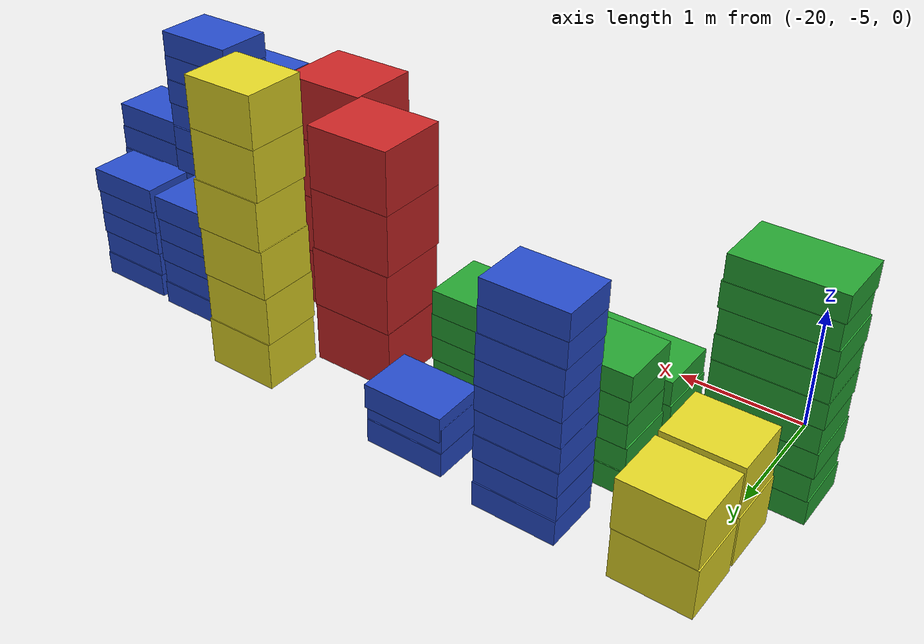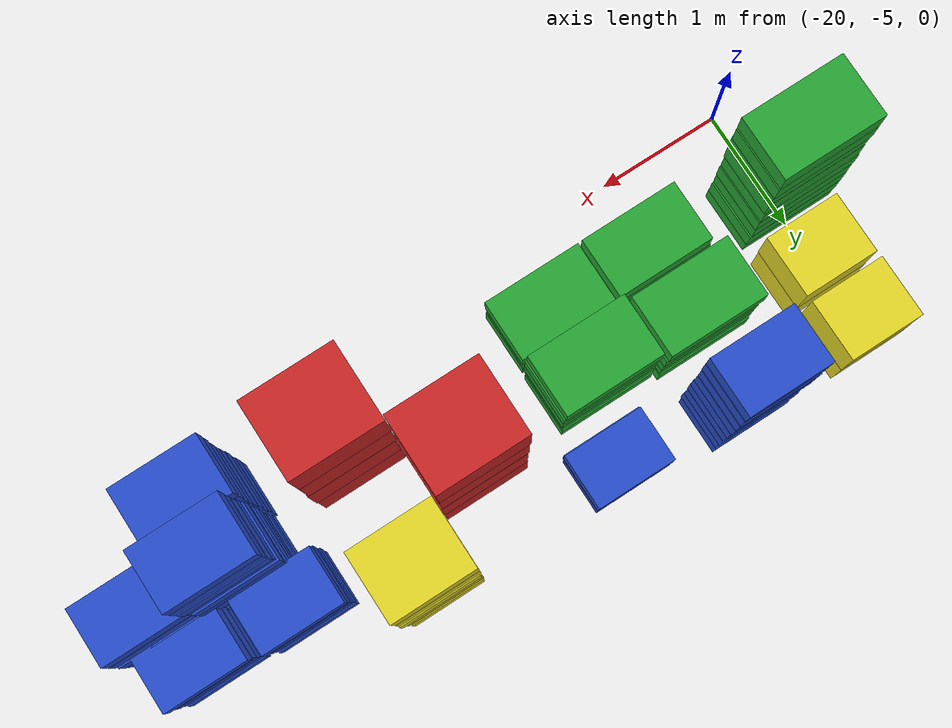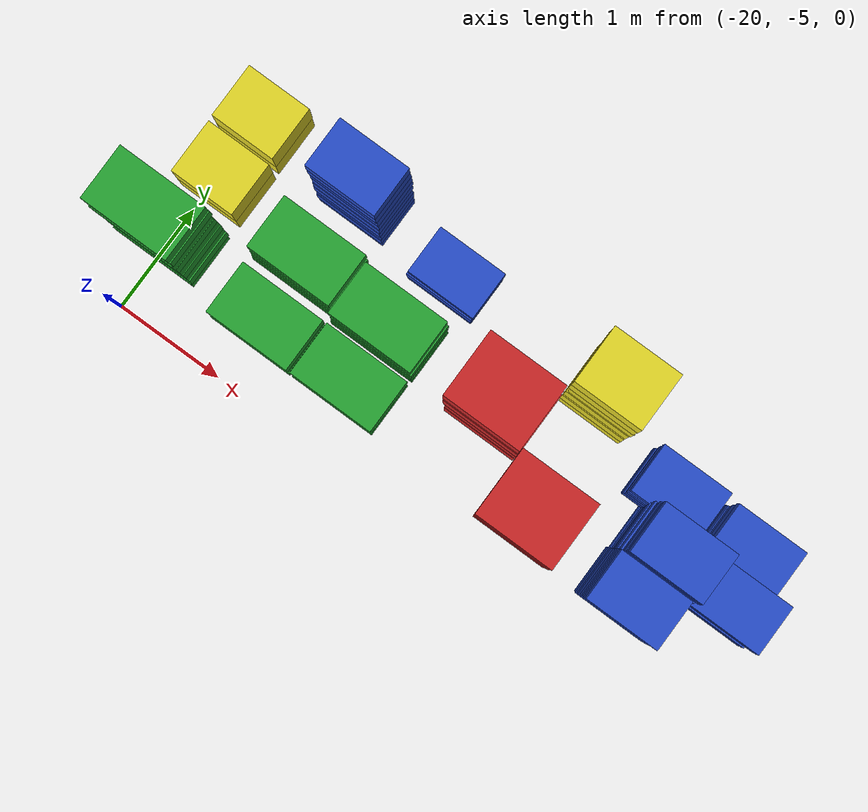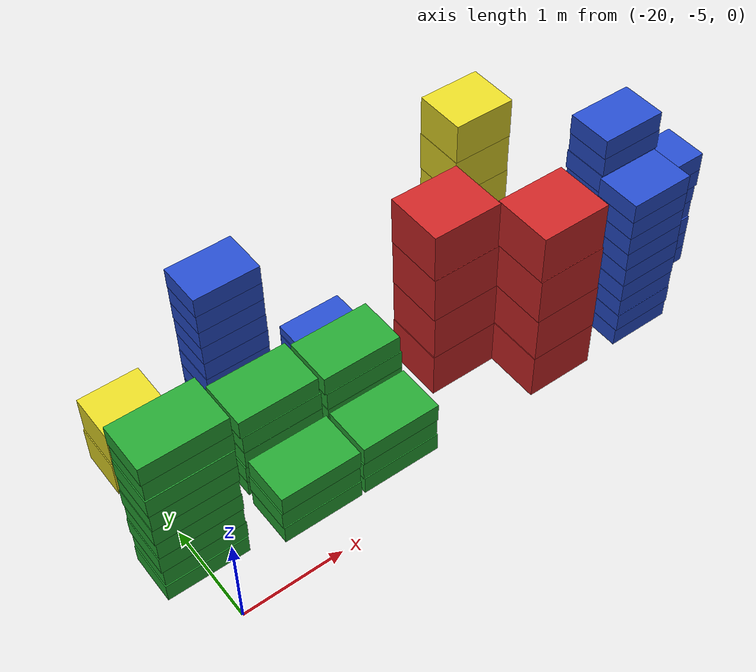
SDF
<sdf version="1.6">
 <world name="default">
  <include><uri>model://sun</uri></include>
  <model name="baggage_B_x7">
   <model name="baggage_B_0">
    <static>1</static>
    <link name="link">
     <collision name="collision"><geometry><box><size>0.65 0.45 0.2</size></box></geometry></collision>
     <visual name="visual">
      <geometry><box><size>0.65 0.45 0.2</size></box></geometry>
      <material>
       <script><uri>file://media/materials/scripts/gazebo.material</uri><name>Gazebo/Blue</name></script>
      </material>
     </visual>
    </link>
    <pose>0 0 0.1 0 -0 0</pose>
   </model>
   <model name="baggage_B_1">
    <static>1</static>
    <link name="link">
     <collision name="collision"><geometry><box><size>0.65 0.45 0.2</size></box></geometry></collision>
     <visual name="visual">
      <geometry><box><size>0.65 0.45 0.2</size></box></geometry>
      <material>
       <script><uri>file://media/materials/scripts/gazebo.material</uri><name>Gazebo/Blue</name></script>
      </material>
     </visual>
    </link>
    <pose>-0.0094 -0.006 0.3 0 -0 0</pose>
   </model>
   <model name="baggage_B_2">
    <static>1</static>
    <link name="link">
     <collision name="collision"><geometry><box><size>0.65 0.45 0.2</size></box></geometry></collision>
     <visual name="visual">
      <geometry><box><size>0.65 0.45 0.2</size></box></geometry>
      <material>
       <script><uri>file://media/materials/scripts/gazebo.material</uri><name>Gazebo/Blue</name></script>
      </material>
     </visual>
    </link>
    <pose>-0.0099 -0.0073 0.5 0 -0 0</pose>
   </model>
   <model name="baggage_B_3">
    <static>1</static>
    <link name="link">
     <collision name="collision"><geometry><box><size>0.65 0.45 0.2</size></box></geometry></collision>
     <visual name="visual">
      <geometry><box><size>0.65 0.45 0.2</size></box></geometry>
      <material>
       <script><uri>file://media/materials/scripts/gazebo.material</uri><name>Gazebo/Blue</name></script>
      </material>
     </visual>
    </link>
    <pose>-0.0063 0.0078 0.7 0 -0 0</pose>
   </model>
   <model name="baggage_B_4">
    <static>1</static>
    <link name="link">
     <collision name="collision"><geometry><box><size>0.65 0.45 0.2</size></box></geometry></collision>
     <visual name="visual">
      <geometry><box><size>0.65 0.45 0.2</size></box></geometry>
      <material>
       <script><uri>file://media/materials/scripts/gazebo.material</uri><name>Gazebo/Blue</name></script>
      </material>
     </visual>
    </link>
    <pose>0.0002 0.0059 0.9 0 -0 0</pose>
   </model>
   <model name="baggage_B_5">
    <static>1</static>
    <link name="link">
     <collision name="collision"><geometry><box><size>0.65 0.45 0.2</size></box></geometry></collision>
     <visual name="visual">
      <geometry><box><size>0.65 0.45 0.2</size></box></geometry>
      <material>
       <script><uri>file://media/materials/scripts/gazebo.material</uri><name>Gazebo/Blue</name></script>
      </material>
     </visual>
    </link>
    <pose>0.0073 -0.0061 1.1 0 -0 0</pose>
   </model>
   <model name="baggage_B_6">
    <static>1</static>
    <link name="link">
     <collision name="collision"><geometry><box><size>0.65 0.45 0.2</size></box></geometry></collision>
     <visual name="visual">
      <geometry><box><size>0.65 0.45 0.2</size></box></geometry>
      <material>
       <script><uri>file://media/materials/scripts/gazebo.material</uri><name>Gazebo/Blue</name></script>
      </material>
     </visual>
    </link>
    <pose>0.0019 -0.0096 1.3 0 -0 0</pose>
   </model>
   <pose>-14.5975 -4.0182 0 0 -0 0</pose>
  </model>
  <model name="baggage_B_x11">
   <model name="baggage_B_0">
    <static>1</static>
    <link name="link">
     <collision name="collision"><geometry><box><size>0.65 0.45 0.2</size></box></geometry></collision>
     <visual name="visual">
      <geometry><box><size>0.65 0.45 0.2</size></box></geometry>
      <material>
       <script><uri>file://media/materials/scripts/gazebo.material</uri><name>Gazebo/Blue</name></script>
      </material>
     </visual>
    </link>
    <pose>0 0 0.1 0 -0 0</pose>
   </model>
   <model name="baggage_B_1">
    <static>1</static>
    <link name="link">
     <collision name="collision"><geometry><box><size>0.65 0.45 0.2</size></box></geometry></collision>
     <visual name="visual">
      <geometry><box><size>0.65 0.45 0.2</size></box></geometry>
      <material>
       <script><uri>file://media/materials/scripts/gazebo.material</uri><name>Gazebo/Blue</name></script>
      </material>
     </visual>
    </link>
    <pose>0.0088 0.0038 0.3 0 -0 0</pose>
   </model>
   <model name="baggage_B_2">
    <static>1</static>
    <link name="link">
     <collision name="collision"><geometry><box><size>0.65 0.45 0.2</size></box></geometry></collision>
     <visual name="visual">
      <geometry><box><size>0.65 0.45 0.2</size></box></geometry>
      <material>
       <script><uri>file://media/materials/scripts/gazebo.material</uri><name>Gazebo/Blue</name></script>
      </material>
     </visual>
    </link>
    <pose>0.0099 0.0013 0.5 0 -0 0</pose>
   </model>
   <model name="baggage_B_3">
    <static>1</static>
    <link name="link">
     <collision name="collision"><geometry><box><size>0.65 0.45 0.2</size></box></geometry></collision>
     <visual name="visual">
      <geometry><box><size>0.65 0.45 0.2</size></box></geometry>
      <material>
       <script><uri>file://media/materials/scripts/gazebo.material</uri><name>Gazebo/Blue</name></script>
      </material>
     </visual>
    </link>
    <pose>0.0022 -0.0084 0.7 0 -0 0</pose>
   </model>
   <model name="baggage_B_4">
    <static>1</static>
    <link name="link">
     <collision name="collision"><geometry><box><size>0.65 0.45 0.2</size></box></geometry></collision>
     <visual name="visual">
      <geometry><box><size>0.65 0.45 0.2</size></box></geometry>
      <material>
       <script><uri>file://media/materials/scripts/gazebo.material</uri><name>Gazebo/Blue</name></script>
      </material>
     </visual>
    </link>
    <pose>-0.0036 0.0023 0.9 0 -0 0</pose>
   </model>
   <model name="baggage_B_5">
    <static>1</static>
    <link name="link">
     <collision name="collision"><geometry><box><size>0.65 0.45 0.2</size></box></geometry></collision>
     <visual name="visual">
      <geometry><box><size>0.65 0.45 0.2</size></box></geometry>
      <material>
       <script><uri>file://media/materials/scripts/gazebo.material</uri><name>Gazebo/Blue</name></script>
      </material>
     </visual>
    </link>
    <pose>0.0085 -0.0016 1.1 0 -0 0</pose>
   </model>
   <model name="baggage_B_6">
    <static>1</static>
    <link name="link">
     <collision name="collision"><geometry><box><size>0.65 0.45 0.2</size></box></geometry></collision>
     <visual name="visual">
      <geometry><box><size>0.65 0.45 0.2</size></box></geometry>
      <material>
       <script><uri>file://media/materials/scripts/gazebo.material</uri><name>Gazebo/Blue</name></script>
      </material>
     </visual>
    </link>
    <pose>-0.0066 0.0086 1.3 0 -0 0</pose>
   </model>
   <model name="baggage_B_7">
    <static>1</static>
    <link name="link">
     <collision name="collision"><geometry><box><size>0.65 0.45 0.2</size></box></geometry></collision>
     <visual name="visual">
      <geometry><box><size>0.65 0.45 0.2</size></box></geometry>
      <material>
       <script><uri>file://media/materials/scripts/gazebo.material</uri><name>Gazebo/Blue</name></script>
      </material>
     </visual>
    </link>
    <pose>0.0096 -0.0061 1.5 0 -0 0</pose>
   </model>
   <model name="baggage_B_8">
    <static>1</static>
    <link name="link">
     <collision name="collision"><geometry><box><size>0.65 0.45 0.2</size></box></geometry></collision>
     <visual name="visual">
      <geometry><box><size>0.65 0.45 0.2</size></box></geometry>
      <material>
       <script><uri>file://media/materials/scripts/gazebo.material</uri><name>Gazebo/Blue</name></script>
      </material>
     </visual>
    </link>
    <pose>0.0048 0.0081 1.7 0 -0 0</pose>
   </model>
   <model name="baggage_B_9">
    <static>1</static>
    <link name="link">
     <collision name="collision"><geometry><box><size>0.65 0.45 0.2</size></box></geometry></collision>
     <visual name="visual">
      <geometry><box><size>0.65 0.45 0.2</size></box></geometry>
      <material>
       <script><uri>file://media/materials/scripts/gazebo.material</uri><name>Gazebo/Blue</name></script>
      </material>
     </visual>
    </link>
    <pose>0.009 0.0009 1.9 0 -0 0</pose>
   </model>
   <model name="baggage_B_10">
    <static>1</static>
    <link name="link">
     <collision name="collision"><geometry><box><size>0.65 0.45 0.2</size></box></geometry></collision>
     <visual name="visual">
      <geometry><box><size>0.65 0.45 0.2</size></box></geometry>
      <material>
       <script><uri>file://media/materials/scripts/gazebo.material</uri><name>Gazebo/Blue</name></script>
      </material>
     </visual>
    </link>
    <pose>0.0028 0.0021 2.1 0 -0 0</pose>
   </model>
   <pose>-15.252 -4.00278 0 0 -0 0</pose>
  </model>
  <model name="baggage_B_x9_0">
   <model name="baggage_B_0">
    <static>1</static>
    <link name="link">
     <collision name="collision"><geometry><box><size>0.65 0.45 0.2</size></box></geometry></collision>
     <visual name="visual">
      <geometry><box><size>0.65 0.45 0.2</size></box></geometry>
      <material>
       <script><uri>file://media/materials/scripts/gazebo.material</uri><name>Gazebo/Blue</name></script>
      </material>
     </visual>
    </link>
    <pose>0 0 0.1 0 -0 0</pose>
   </model>
   <model name="baggage_B_1">
    <static>1</static>
    <link name="link">
     <collision name="collision"><geometry><box><size>0.65 0.45 0.2</size></box></geometry></collision>
     <visual name="visual">
      <geometry><box><size>0.65 0.45 0.2</size></box></geometry>
      <material>
       <script><uri>file://media/materials/scripts/gazebo.material</uri><name>Gazebo/Blue</name></script>
      </material>
     </visual>
    </link>
    <pose>0.001 -0.0095 0.3 0 -0 0</pose>
   </model>
   <model name="baggage_B_2">
    <static>1</static>
    <link name="link">
     <collision name="collision"><geometry><box><size>0.65 0.45 0.2</size></box></geometry></collision>
     <visual name="visual">
      <geometry><box><size>0.65 0.45 0.2</size></box></geometry>
      <material>
       <script><uri>file://media/materials/scripts/gazebo.material</uri><name>Gazebo/Blue</name></script>
      </material>
     </visual>
    </link>
    <pose>0.0028 -0.0029 0.5 0 -0 0</pose>
   </model>
   <model name="baggage_B_3">
    <static>1</static>
    <link name="link">
     <collision name="collision"><geometry><box><size>0.65 0.45 0.2</size></box></geometry></collision>
     <visual name="visual">
      <geometry><box><size>0.65 0.45 0.2</size></box></geometry>
      <material>
       <script><uri>file://media/materials/scripts/gazebo.material</uri><name>Gazebo/Blue</name></script>
      </material>
     </visual>
    </link>
    <pose>-0.0004 -0.0089 0.7 0 -0 0</pose>
   </model>
   <model name="baggage_B_4">
    <static>1</static>
    <link name="link">
     <collision name="collision"><geometry><box><size>0.65 0.45 0.2</size></box></geometry></collision>
     <visual name="visual">
      <geometry><box><size>0.65 0.45 0.2</size></box></geometry>
      <material>
       <script><uri>file://media/materials/scripts/gazebo.material</uri><name>Gazebo/Blue</name></script>
      </material>
     </visual>
    </link>
    <pose>0.0034 -0.0062 0.9 0 -0 0</pose>
   </model>
   <model name="baggage_B_5">
    <static>1</static>
    <link name="link">
     <collision name="collision"><geometry><box><size>0.65 0.45 0.2</size></box></geometry></collision>
     <visual name="visual">
      <geometry><box><size>0.65 0.45 0.2</size></box></geometry>
      <material>
       <script><uri>file://media/materials/scripts/gazebo.material</uri><name>Gazebo/Blue</name></script>
      </material>
     </visual>
    </link>
    <pose>0.0037 -0.0012 1.1 0 -0 0</pose>
   </model>
   <model name="baggage_B_6">
    <static>1</static>
    <link name="link">
     <collision name="collision"><geometry><box><size>0.65 0.45 0.2</size></box></geometry></collision>
     <visual name="visual">
      <geometry><box><size>0.65 0.45 0.2</size></box></geometry>
      <material>
       <script><uri>file://media/materials/scripts/gazebo.material</uri><name>Gazebo/Blue</name></script>
      </material>
     </visual>
    </link>
    <pose>0 -0.0018 1.3 0 -0 0</pose>
   </model>
   <model name="baggage_B_7">
    <static>1</static>
    <link name="link">
     <collision name="collision"><geometry><box><size>0.65 0.45 0.2</size></box></geometry></collision>
     <visual name="visual">
      <geometry><box><size>0.65 0.45 0.2</size></box></geometry>
      <material>
       <script><uri>file://media/materials/scripts/gazebo.material</uri><name>Gazebo/Blue</name></script>
      </material>
     </visual>
    </link>
    <pose>-0.0036 -0.0074 1.5 0 -0 0</pose>
   </model>
   <model name="baggage_B_8">
    <static>1</static>
    <link name="link">
     <collision name="collision"><geometry><box><size>0.65 0.45 0.2</size></box></geometry></collision>
     <visual name="visual">
      <geometry><box><size>0.65 0.45 0.2</size></box></geometry>
      <material>
       <script><uri>file://media/materials/scripts/gazebo.material</uri><name>Gazebo/Blue</name></script>
      </material>
     </visual>
    </link>
    <pose>-0.0068 -0.0081 1.7 0 -0 0</pose>
   </model>
   <pose>-15.2703 -4.44925 0 0 -0 0</pose>
  </model>
  <model name="baggage_A_x4">
   <model name="baggage_A_0">
    <static>1</static>
    <link name="link">
     <collision name="collision"><geometry><box><size>0.7 0.6 0.5</size></box></geometry></collision>
     <visual name="visual">
      <geometry><box><size>0.7 0.6 0.5</size></box></geometry>
      <material>
       <script><uri>file://media/materials/scripts/gazebo.material</uri><name>Gazebo/Red</name></script>
      </material>
     </visual>
    </link>
    <pose>0 0 0.25 0 -0 0</pose>
   </model>
   <model name="baggage_A_1">
    <static>1</static>
    <link name="link">
     <collision name="collision"><geometry><box><size>0.7 0.6 0.5</size></box></geometry></collision>
     <visual name="visual">
      <geometry><box><size>0.7 0.6 0.5</size></box></geometry>
      <material>
       <script><uri>file://media/materials/scripts/gazebo.material</uri><name>Gazebo/Red</name></script>
      </material>
     </visual>
    </link>
    <pose>0.0053 0.0033 0.75 0 -0 0</pose>
   </model>
   <model name="baggage_A_2">
    <static>1</static>
    <link name="link">
     <collision name="collision"><geometry><box><size>0.7 0.6 0.5</size></box></geometry></collision>
     <visual name="visual">
      <geometry><box><size>0.7 0.6 0.5</size></box></geometry>
      <material>
       <script><uri>file://media/materials/scripts/gazebo.material</uri><name>Gazebo/Red</name></script>
      </material>
     </visual>
    </link>
    <pose>-0.0056 -0.0003 1.25 0 -0 0</pose>
   </model>
   <model name="baggage_A_3">
    <static>1</static>
    <link name="link">
     <collision name="collision"><geometry><box><size>0.7 0.6 0.5</size></box></geometry></collision>
     <visual name="visual">
      <geometry><box><size>0.7 0.6 0.5</size></box></geometry>
      <material>
       <script><uri>file://media/materials/scripts/gazebo.material</uri><name>Gazebo/Red</name></script>
      </material>
     </visual>
    </link>
    <pose>-0.0098 0.0065 1.75 0 -0 0</pose>
   </model>
   <pose>-16.2769 -4.37446 0 0 -0 0</pose>
  </model>
  <model name="baggage_A_x4_0">
   <model name="baggage_A_0">
    <static>1</static>
    <link name="link">
     <collision name="collision"><geometry><box><size>0.7 0.6 0.5</size></box></geometry></collision>
     <visual name="visual">
      <geometry><box><size>0.7 0.6 0.5</size></box></geometry>
      <material>
       <script><uri>file://media/materials/scripts/gazebo.material</uri><name>Gazebo/Red</name></script>
      </material>
     </visual>
    </link>
    <pose>0 0 0.25 0 -0 0</pose>
   </model>
   <model name="baggage_A_1">
    <static>1</static>
    <link name="link">
     <collision name="collision"><geometry><box><size>0.7 0.6 0.5</size></box></geometry></collision>
     <visual name="visual">
      <geometry><box><size>0.7 0.6 0.5</size></box></geometry>
      <material>
       <script><uri>file://media/materials/scripts/gazebo.material</uri><name>Gazebo/Red</name></script>
      </material>
     </visual>
    </link>
    <pose>0.0053 0.0033 0.75 0 -0 0</pose>
   </model>
   <model name="baggage_A_2">
    <static>1</static>
    <link name="link">
     <collision name="collision"><geometry><box><size>0.7 0.6 0.5</size></box></geometry></collision>
     <visual name="visual">
      <geometry><box><size>0.7 0.6 0.5</size></box></geometry>
      <material>
       <script><uri>file://media/materials/scripts/gazebo.material</uri><name>Gazebo/Red</name></script>
      </material>
     </visual>
    </link>
    <pose>-0.0056 -0.0003 1.25 0 -0 0</pose>
   </model>
   <model name="baggage_A_3">
    <static>1</static>
    <link name="link">
     <collision name="collision"><geometry><box><size>0.7 0.6 0.5</size></box></geometry></collision>
     <visual name="visual">
      <geometry><box><size>0.7 0.6 0.5</size></box></geometry>
      <material>
       <script><uri>file://media/materials/scripts/gazebo.material</uri><name>Gazebo/Red</name></script>
      </material>
     </visual>
    </link>
    <pose>-0.0098 0.0065 1.75 0 -0 0</pose>
   </model>
   <pose>-16.9839 -3.81262 0 0 -0 0</pose>
  </model>
  <model name="baggage_D_x3">
   <model name="baggage_D_0">
    <static>1</static>
    <link name="link">
     <collision name="collision"><geometry><box><size>0.8 0.5 0.2</size></box></geometry></collision>
     <visual name="visual">
      <geometry><box><size>0.8 0.5 0.2</size></box></geometry>
      <material>
       <script><uri>file://media/materials/scripts/gazebo.material</uri><name>Gazebo/Green</name></script>
      </material>
     </visual>
    </link>
    <pose>0 0 0.1 0 -0 0</pose>
   </model>
   <model name="baggage_D_1">
    <static>1</static>
    <link name="link">
     <collision name="collision"><geometry><box><size>0.8 0.5 0.2</size></box></geometry></collision>
     <visual name="visual">
      <geometry><box><size>0.8 0.5 0.2</size></box></geometry>
      <material>
       <script><uri>file://media/materials/scripts/gazebo.material</uri><name>Gazebo/Green</name></script>
      </material>
     </visual>
    </link>
    <pose>-0.0056 0.0083 0.3 0 -0 0</pose>
   </model>
   <model name="baggage_D_2">
    <static>1</static>
    <link name="link">
     <collision name="collision"><geometry><box><size>0.8 0.5 0.2</size></box></geometry></collision>
     <visual name="visual">
      <geometry><box><size>0.8 0.5 0.2</size></box></geometry>
      <material>
       <script><uri>file://media/materials/scripts/gazebo.material</uri><name>Gazebo/Green</name></script>
      </material>
     </visual>
    </link>
    <pose>0.0053 0.0057 0.5 0 -0 0</pose>
   </model>
   <pose>-18.0931 -4.38096 0 0 -0 0</pose>
  </model>
  <model name="baggage_D_x5">
   <model name="baggage_D_0">
    <static>1</static>
    <link name="link">
     <collision name="collision"><geometry><box><size>0.8 0.5 0.2</size></box></geometry></collision>
     <visual name="visual">
      <geometry><box><size>0.8 0.5 0.2</size></box></geometry>
      <material>
       <script><uri>file://media/materials/scripts/gazebo.material</uri><name>Gazebo/Green</name></script>
      </material>
     </visual>
    </link>
    <pose>0 0 0.1 0 -0 0</pose>
   </model>
   <model name="baggage_D_1">
    <static>1</static>
    <link name="link">
     <collision name="collision"><geometry><box><size>0.8 0.5 0.2</size></box></geometry></collision>
     <visual name="visual">
      <geometry><box><size>0.8 0.5 0.2</size></box></geometry>
      <material>
       <script><uri>file://media/materials/scripts/gazebo.material</uri><name>Gazebo/Green</name></script>
      </material>
     </visual>
    </link>
    <pose>-0.0065 -0.0092 0.3 0 -0 0</pose>
   </model>
   <model name="baggage_D_2">
    <static>1</static>
    <link name="link">
     <collision name="collision"><geometry><box><size>0.8 0.5 0.2</size></box></geometry></collision>
     <visual name="visual">
      <geometry><box><size>0.8 0.5 0.2</size></box></geometry>
      <material>
       <script><uri>file://media/materials/scripts/gazebo.material</uri><name>Gazebo/Green</name></script>
      </material>
     </visual>
    </link>
    <pose>0.005 -0.0052 0.5 0 -0 0</pose>
   </model>
   <model name="baggage_D_3">
    <static>1</static>
    <link name="link">
     <collision name="collision"><geometry><box><size>0.8 0.5 0.2</size></box></geometry></collision>
     <visual name="visual">
      <geometry><box><size>0.8 0.5 0.2</size></box></geometry>
      <material>
       <script><uri>file://media/materials/scripts/gazebo.material</uri><name>Gazebo/Green</name></script>
      </material>
     </visual>
    </link>
    <pose>0.0074 0.0002 0.7 0 -0 0</pose>
   </model>
   <model name="baggage_D_4">
    <static>1</static>
    <link name="link">
     <collision name="collision"><geometry><box><size>0.8 0.5 0.2</size></box></geometry></collision>
     <visual name="visual">
      <geometry><box><size>0.8 0.5 0.2</size></box></geometry>
      <material>
       <script><uri>file://media/materials/scripts/gazebo.material</uri><name>Gazebo/Green</name></script>
      </material>
     </visual>
    </link>
    <pose>-0.006 0.0081 0.9 0 -0 0</pose>
   </model>
   <pose>-18.083 -3.83282 0 0 -0 0</pose>
  </model>
  <model name="baggage_D_x5_0">
   <model name="baggage_D_0">
    <static>1</static>
    <link name="link">
     <collision name="collision"><geometry><box><size>0.8 0.5 0.2</size></box></geometry></collision>
     <visual name="visual">
      <geometry><box><size>0.8 0.5 0.2</size></box></geometry>
      <material>
       <script><uri>file://media/materials/scripts/gazebo.material</uri><name>Gazebo/Green</name></script>
      </material>
     </visual>
    </link>
    <pose>0 0 0.1 0 -0 0</pose>
   </model>
   <model name="baggage_D_1">
    <static>1</static>
    <link name="link">
     <collision name="collision"><geometry><box><size>0.8 0.5 0.2</size></box></geometry></collision>
     <visual name="visual">
      <geometry><box><size>0.8 0.5 0.2</size></box></geometry>
      <material>
       <script><uri>file://media/materials/scripts/gazebo.material</uri><name>Gazebo/Green</name></script>
      </material>
     </visual>
    </link>
    <pose>-0.0065 -0.0092 0.3 0 -0 0</pose>
   </model>
   <model name="baggage_D_2">
    <static>1</static>
    <link name="link">
     <collision name="collision"><geometry><box><size>0.8 0.5 0.2</size></box></geometry></collision>
     <visual name="visual">
      <geometry><box><size>0.8 0.5 0.2</size></box></geometry>
      <material>
       <script><uri>file://media/materials/scripts/gazebo.material</uri><name>Gazebo/Green</name></script>
      </material>
     </visual>
    </link>
    <pose>0.005 -0.0052 0.5 0 -0 0</pose>
   </model>
   <model name="baggage_D_3">
    <static>1</static>
    <link name="link">
     <collision name="collision"><geometry><box><size>0.8 0.5 0.2</size></box></geometry></collision>
     <visual name="visual">
      <geometry><box><size>0.8 0.5 0.2</size></box></geometry>
      <material>
       <script><uri>file://media/materials/scripts/gazebo.material</uri><name>Gazebo/Green</name></script>
      </material>
     </visual>
    </link>
    <pose>0.0074 0.0002 0.7 0 -0 0</pose>
   </model>
   <model name="baggage_D_4">
    <static>1</static>
    <link name="link">
     <collision name="collision"><geometry><box><size>0.8 0.5 0.2</size></box></geometry></collision>
     <visual name="visual">
      <geometry><box><size>0.8 0.5 0.2</size></box></geometry>
      <material>
       <script><uri>file://media/materials/scripts/gazebo.material</uri><name>Gazebo/Green</name></script>
      </material>
     </visual>
    </link>
    <pose>-0.006 0.0081 0.9 0 -0 0</pose>
   </model>
   <pose>-18.9113 -3.78783 0 0 -0 0</pose>
  </model>
  <model name="baggage_D_x3_0">
   <model name="baggage_D_0">
    <static>1</static>
    <link name="link">
     <collision name="collision"><geometry><box><size>0.8 0.5 0.2</size></box></geometry></collision>
     <visual name="visual">
      <geometry><box><size>0.8 0.5 0.2</size></box></geometry>
      <material>
       <script><uri>file://media/materials/scripts/gazebo.material</uri><name>Gazebo/Green</name></script>
      </material>
     </visual>
    </link>
    <pose>0 0 0.1 0 -0 0</pose>
   </model>
   <model name="baggage_D_1">
    <static>1</static>
    <link name="link">
     <collision name="collision"><geometry><box><size>0.8 0.5 0.2</size></box></geometry></collision>
     <visual name="visual">
      <geometry><box><size>0.8 0.5 0.2</size></box></geometry>
      <material>
       <script><uri>file://media/materials/scripts/gazebo.material</uri><name>Gazebo/Green</name></script>
      </material>
     </visual>
    </link>
    <pose>-0.0056 0.0083 0.3 0 -0 0</pose>
   </model>
   <model name="baggage_D_2">
    <static>1</static>
    <link name="link">
     <collision name="collision"><geometry><box><size>0.8 0.5 0.2</size></box></geometry></collision>
     <visual name="visual">
      <geometry><box><size>0.8 0.5 0.2</size></box></geometry>
      <material>
       <script><uri>file://media/materials/scripts/gazebo.material</uri><name>Gazebo/Green</name></script>
      </material>
     </visual>
    </link>
    <pose>0.0053 0.0057 0.5 0 -0 0</pose>
   </model>
   <pose>-18.9298 -4.38377 0 0 -0 0</pose>
  </model>
  <model name="baggage_D_x9">
   <model name="baggage_D_0">
    <static>1</static>
    <link name="link">
     <collision name="collision"><geometry><box><size>0.8 0.5 0.2</size></box></geometry></collision>
     <visual name="visual">
      <geometry><box><size>0.8 0.5 0.2</size></box></geometry>
      <material>
       <script><uri>file://media/materials/scripts/gazebo.material</uri><name>Gazebo/Green</name></script>
      </material>
     </visual>
    </link>
    <pose>0 0 0.1 0 -0 0</pose>
   </model>
   <model name="baggage_D_1">
    <static>1</static>
    <link name="link">
     <collision name="collision"><geometry><box><size>0.8 0.5 0.2</size></box></geometry></collision>
     <visual name="visual">
      <geometry><box><size>0.8 0.5 0.2</size></box></geometry>
      <material>
       <script><uri>file://media/materials/scripts/gazebo.material</uri><name>Gazebo/Green</name></script>
      </material>
     </visual>
    </link>
    <pose>0.0092 0.0098 0.3 0 -0 0</pose>
   </model>
   <model name="baggage_D_2">
    <static>1</static>
    <link name="link">
     <collision name="collision"><geometry><box><size>0.8 0.5 0.2</size></box></geometry></collision>
     <visual name="visual">
      <geometry><box><size>0.8 0.5 0.2</size></box></geometry>
      <material>
       <script><uri>file://media/materials/scripts/gazebo.material</uri><name>Gazebo/Green</name></script>
      </material>
     </visual>
    </link>
    <pose>-0.0038 0.0073 0.5 0 -0 0</pose>
   </model>
   <model name="baggage_D_3">
    <static>1</static>
    <link name="link">
     <collision name="collision"><geometry><box><size>0.8 0.5 0.2</size></box></geometry></collision>
     <visual name="visual">
      <geometry><box><size>0.8 0.5 0.2</size></box></geometry>
      <material>
       <script><uri>file://media/materials/scripts/gazebo.material</uri><name>Gazebo/Green</name></script>
      </material>
     </visual>
    </link>
    <pose>0.0044 0.0085 0.7 0 -0 0</pose>
   </model>
   <model name="baggage_D_4">
    <static>1</static>
    <link name="link">
     <collision name="collision"><geometry><box><size>0.8 0.5 0.2</size></box></geometry></collision>
     <visual name="visual">
      <geometry><box><size>0.8 0.5 0.2</size></box></geometry>
      <material>
       <script><uri>file://media/materials/scripts/gazebo.material</uri><name>Gazebo/Green</name></script>
      </material>
     </visual>
    </link>
    <pose>-0.0044 0.0075 0.9 0 -0 0</pose>
   </model>
   <model name="baggage_D_5">
    <static>1</static>
    <link name="link">
     <collision name="collision"><geometry><box><size>0.8 0.5 0.2</size></box></geometry></collision>
     <visual name="visual">
      <geometry><box><size>0.8 0.5 0.2</size></box></geometry>
      <material>
       <script><uri>file://media/materials/scripts/gazebo.material</uri><name>Gazebo/Green</name></script>
      </material>
     </visual>
    </link>
    <pose>0.0002 0.0017 1.1 0 -0 0</pose>
   </model>
   <model name="baggage_D_6">
    <static>1</static>
    <link name="link">
     <collision name="collision"><geometry><box><size>0.8 0.5 0.2</size></box></geometry></collision>
     <visual name="visual">
      <geometry><box><size>0.8 0.5 0.2</size></box></geometry>
      <material>
       <script><uri>file://media/materials/scripts/gazebo.material</uri><name>Gazebo/Green</name></script>
      </material>
     </visual>
    </link>
    <pose>-0.0057 -0.0032 1.3 0 -0 0</pose>
   </model>
   <model name="baggage_D_7">
    <static>1</static>
    <link name="link">
     <collision name="collision"><geometry><box><size>0.8 0.5 0.2</size></box></geometry></collision>
     <visual name="visual">
      <geometry><box><size>0.8 0.5 0.2</size></box></geometry>
      <material>
       <script><uri>file://media/materials/scripts/gazebo.material</uri><name>Gazebo/Green</name></script>
      </material>
     </visual>
    </link>
    <pose>0.0039 0.0078 1.5 0 -0 0</pose>
   </model>
   <model name="baggage_D_8">
    <static>1</static>
    <link name="link">
     <collision name="collision"><geometry><box><size>0.8 0.5 0.2</size></box></geometry></collision>
     <visual name="visual">
      <geometry><box><size>0.8 0.5 0.2</size></box></geometry>
      <material>
       <script><uri>file://media/materials/scripts/gazebo.material</uri><name>Gazebo/Green</name></script>
      </material>
     </visual>
    </link>
    <pose>-0.006 0.0028 1.7 0 -0 0</pose>
   </model>
   <pose>-20.0133 -4.26643 0 0 -0 0</pose>
  </model>
  <model name="baggage_C_x2">
   <model name="baggage_C_0">
    <static>1</static>
    <link name="link">
     <collision name="collision"><geometry><box><size>0.6 0.5 0.4</size></box></geometry></collision>
     <visual name="visual">
      <geometry><box><size>0.6 0.5 0.4</size></box></geometry>
      <material>
       <script><uri>file://media/materials/scripts/gazebo.material</uri><name>Gazebo/Yellow</name></script>
      </material>
     </visual>
    </link>
    <pose>0 0 0.2 0 -0 0</pose>
   </model>
   <model name="baggage_C_1">
    <static>1</static>
    <link name="link">
     <collision name="collision"><geometry><box><size>0.6 0.5 0.4</size></box></geometry></collision>
     <visual name="visual">
      <geometry><box><size>0.6 0.5 0.4</size></box></geometry>
      <material>
       <script><uri>file://media/materials/scripts/gazebo.material</uri><name>Gazebo/Yellow</name></script>
      </material>
     </visual>
    </link>
    <pose>0.0093 -0.002 0.6 0 -0 0</pose>
   </model>
   <pose>-19.9011 -3.63896 0 0 -0 0</pose>
  </model>
  <model name="baggage_C_x2_0">
   <model name="baggage_C_0">
    <static>1</static>
    <link name="link">
     <collision name="collision"><geometry><box><size>0.6 0.5 0.4</size></box></geometry></collision>
     <visual name="visual">
      <geometry><box><size>0.6 0.5 0.4</size></box></geometry>
      <material>
       <script><uri>file://media/materials/scripts/gazebo.material</uri><name>Gazebo/Yellow</name></script>
      </material>
     </visual>
    </link>
    <pose>0 0 0.2 0 -0 0</pose>
   </model>
   <model name="baggage_C_1">
    <static>1</static>
    <link name="link">
     <collision name="collision"><geometry><box><size>0.6 0.5 0.4</size></box></geometry></collision>
     <visual name="visual">
      <geometry><box><size>0.6 0.5 0.4</size></box></geometry>
      <material>
       <script><uri>file://media/materials/scripts/gazebo.material</uri><name>Gazebo/Yellow</name></script>
      </material>
     </visual>
    </link>
    <pose>0.0093 -0.002 0.6 0 -0 0</pose>
   </model>
   <pose>-19.908 -3.08806 0 0 -0 0</pose>
  </model>
  <model name="baggage_B_x9_1">
   <model name="baggage_B_0">
    <static>1</static>
    <link name="link">
     <collision name="collision"><geometry><box><size>0.65 0.45 0.2</size></box></geometry></collision>
     <visual name="visual">
      <geometry><box><size>0.65 0.45 0.2</size></box></geometry>
      <material>
       <script><uri>file://media/materials/scripts/gazebo.material</uri><name>Gazebo/Blue</name></script>
      </material>
     </visual>
    </link>
    <pose>0 0 0.1 0 -0 0</pose>
   </model>
   <model name="baggage_B_1">
    <static>1</static>
    <link name="link">
     <collision name="collision"><geometry><box><size>0.65 0.45 0.2</size></box></geometry></collision>
     <visual name="visual">
      <geometry><box><size>0.65 0.45 0.2</size></box></geometry>
      <material>
       <script><uri>file://media/materials/scripts/gazebo.material</uri><name>Gazebo/Blue</name></script>
      </material>
     </visual>
    </link>
    <pose>0.001 -0.0095 0.3 0 -0 0</pose>
   </model>
   <model name="baggage_B_2">
    <static>1</static>
    <link name="link">
     <collision name="collision"><geometry><box><size>0.65 0.45 0.2</size></box></geometry></collision>
     <visual name="visual">
      <geometry><box><size>0.65 0.45 0.2</size></box></geometry>
      <material>
       <script><uri>file://media/materials/scripts/gazebo.material</uri><name>Gazebo/Blue</name></script>
      </material>
     </visual>
    </link>
    <pose>0.0028 -0.0029 0.5 0 -0 0</pose>
   </model>
   <model name="baggage_B_3">
    <static>1</static>
    <link name="link">
     <collision name="collision"><geometry><box><size>0.65 0.45 0.2</size></box></geometry></collision>
     <visual name="visual">
      <geometry><box><size>0.65 0.45 0.2</size></box></geometry>
      <material>
       <script><uri>file://media/materials/scripts/gazebo.material</uri><name>Gazebo/Blue</name></script>
      </material>
     </visual>
    </link>
    <pose>-0.0004 -0.0089 0.7 0 -0 0</pose>
   </model>
   <model name="baggage_B_4">
    <static>1</static>
    <link name="link">
     <collision name="collision"><geometry><box><size>0.65 0.45 0.2</size></box></geometry></collision>
     <visual name="visual">
      <geometry><box><size>0.65 0.45 0.2</size></box></geometry>
      <material>
       <script><uri>file://media/materials/scripts/gazebo.material</uri><name>Gazebo/Blue</name></script>
      </material>
     </visual>
    </link>
    <pose>0.0034 -0.0062 0.9 0 -0 0</pose>
   </model>
   <model name="baggage_B_5">
    <static>1</static>
    <link name="link">
     <collision name="collision"><geometry><box><size>0.65 0.45 0.2</size></box></geometry></collision>
     <visual name="visual">
      <geometry><box><size>0.65 0.45 0.2</size></box></geometry>
      <material>
       <script><uri>file://media/materials/scripts/gazebo.material</uri><name>Gazebo/Blue</name></script>
      </material>
     </visual>
    </link>
    <pose>0.0037 -0.0012 1.1 0 -0 0</pose>
   </model>
   <model name="baggage_B_6">
    <static>1</static>
    <link name="link">
     <collision name="collision"><geometry><box><size>0.65 0.45 0.2</size></box></geometry></collision>
     <visual name="visual">
      <geometry><box><size>0.65 0.45 0.2</size></box></geometry>
      <material>
       <script><uri>file://media/materials/scripts/gazebo.material</uri><name>Gazebo/Blue</name></script>
      </material>
     </visual>
    </link>
    <pose>0 -0.0018 1.3 0 -0 0</pose>
   </model>
   <model name="baggage_B_7">
    <static>1</static>
    <link name="link">
     <collision name="collision"><geometry><box><size>0.65 0.45 0.2</size></box></geometry></collision>
     <visual name="visual">
      <geometry><box><size>0.65 0.45 0.2</size></box></geometry>
      <material>
       <script><uri>file://media/materials/scripts/gazebo.material</uri><name>Gazebo/Blue</name></script>
      </material>
     </visual>
    </link>
    <pose>-0.0036 -0.0074 1.5 0 -0 0</pose>
   </model>
   <model name="baggage_B_8">
    <static>1</static>
    <link name="link">
     <collision name="collision"><geometry><box><size>0.65 0.45 0.2</size></box></geometry></collision>
     <visual name="visual">
      <geometry><box><size>0.65 0.45 0.2</size></box></geometry>
      <material>
       <script><uri>file://media/materials/scripts/gazebo.material</uri><name>Gazebo/Blue</name></script>
      </material>
     </visual>
    </link>
    <pose>-0.0068 -0.0081 1.7 0 -0 0</pose>
   </model>
   <pose>-18.8789 -3.08703 0 0 -0 0</pose>
  </model>
  <model name="baggage_B_x3">
   <model name="baggage_B_0">
    <static>1</static>
    <link name="link">
     <collision name="collision"><geometry><box><size>0.65 0.45 0.2</size></box></geometry></collision>
     <visual name="visual">
      <geometry><box><size>0.65 0.45 0.2</size></box></geometry>
      <material>
       <script><uri>file://media/materials/scripts/gazebo.material</uri><name>Gazebo/Blue</name></script>
      </material>
     </visual>
    </link>
    <pose>0 0 0.1 0 -0 0</pose>
   </model>
   <model name="baggage_B_1">
    <static>1</static>
    <link name="link">
     <collision name="collision"><geometry><box><size>0.65 0.45 0.2</size></box></geometry></collision>
     <visual name="visual">
      <geometry><box><size>0.65 0.45 0.2</size></box></geometry>
      <material>
       <script><uri>file://media/materials/scripts/gazebo.material</uri><name>Gazebo/Blue</name></script>
      </material>
     </visual>
    </link>
    <pose>0.0028 -0.0086 0.3 0 -0 0</pose>
   </model>
   <model name="baggage_B_2">
    <static>1</static>
    <link name="link">
     <collision name="collision"><geometry><box><size>0.65 0.45 0.2</size></box></geometry></collision>
     <visual name="visual">
      <geometry><box><size>0.65 0.45 0.2</size></box></geometry>
      <material>
       <script><uri>file://media/materials/scripts/gazebo.material</uri><name>Gazebo/Blue</name></script>
      </material>
     </visual>
    </link>
    <pose>0.0092 0.006 0.4 0 -0 0</pose>
   </model>
   <pose>-17.9041 -3.18018 0 0 -0 0</pose>
  </model>
  <model name="baggage_C_x6">
   <model name="baggage_C_0">
    <static>1</static>
    <link name="link">
     <collision name="collision"><geometry><box><size>0.6 0.5 0.4</size></box></geometry></collision>
     <visual name="visual">
      <geometry><box><size>0.6 0.5 0.4</size></box></geometry>
      <material>
       <script><uri>file://media/materials/scripts/gazebo.material</uri><name>Gazebo/Yellow</name></script>
      </material>
     </visual>
    </link>
    <pose>0 0 0.2 0 -0 0</pose>
   </model>
   <model name="baggage_C_1">
    <static>1</static>
    <link name="link">
     <collision name="collision"><geometry><box><size>0.6 0.5 0.4</size></box></geometry></collision>
     <visual name="visual">
      <geometry><box><size>0.6 0.5 0.4</size></box></geometry>
      <material>
       <script><uri>file://media/materials/scripts/gazebo.material</uri><name>Gazebo/Yellow</name></script>
      </material>
     </visual>
    </link>
    <pose>-0.0071 -0.0068 0.6 0 -0 0</pose>
   </model>
   <model name="baggage_C_2">
    <static>1</static>
    <link name="link">
     <collision name="collision"><geometry><box><size>0.6 0.5 0.4</size></box></geometry></collision>
     <visual name="visual">
      <geometry><box><size>0.6 0.5 0.4</size></box></geometry>
      <material>
       <script><uri>file://media/materials/scripts/gazebo.material</uri><name>Gazebo/Yellow</name></script>
      </material>
     </visual>
    </link>
    <pose>-0.0044 0.0019 1 0 -0 0</pose>
   </model>
   <model name="baggage_C_3">
    <static>1</static>
    <link name="link">
     <collision name="collision"><geometry><box><size>0.6 0.5 0.4</size></box></geometry></collision>
     <visual name="visual">
      <geometry><box><size>0.6 0.5 0.4</size></box></geometry>
      <material>
       <script><uri>file://media/materials/scripts/gazebo.material</uri><name>Gazebo/Yellow</name></script>
      </material>
     </visual>
    </link>
    <pose>0.0037 0.0086 1.4 0 -0 0</pose>
   </model>
   <model name="baggage_C_4">
    <static>1</static>
    <link name="link">
     <collision name="collision"><geometry><box><size>0.6 0.5 0.4</size></box></geometry></collision>
     <visual name="visual">
      <geometry><box><size>0.6 0.5 0.4</size></box></geometry>
      <material>
       <script><uri>file://media/materials/scripts/gazebo.material</uri><name>Gazebo/Yellow</name></script>
      </material>
     </visual>
    </link>
    <pose>-0.0088 0.001 1.8 0 -0 0</pose>
   </model>
   <model name="baggage_C_5">
    <static>1</static>
    <link name="link">
     <collision name="collision"><geometry><box><size>0.6 0.5 0.4</size></box></geometry></collision>
     <visual name="visual">
      <geometry><box><size>0.6 0.5 0.4</size></box></geometry>
      <material>
       <script><uri>file://media/materials/scripts/gazebo.material</uri><name>Gazebo/Yellow</name></script>
      </material>
     </visual>
    </link>
    <pose>-0.0069 -0.0007 2.2 0 -0 0</pose>
   </model>
   <pose>-16.318 -3.23433 0 0 -0 0</pose>
  </model>
  <model name="baggage_B_x5">
   <model name="baggage_B_0">
    <static>1</static>
    <link name="link">
     <collision name="collision"><geometry><box><size>0.65 0.45 0.2</size></box></geometry></collision>
     <visual name="visual">
      <geometry><box><size>0.65 0.45 0.2</size></box></geometry>
      <material>
       <script><uri>file://media/materials/scripts/gazebo.material</uri><name>Gazebo/Blue</name></script>
      </material>
     </visual>
    </link>
    <pose>0 0 0.1 0 -0 0</pose>
   </model>
   <model name="baggage_B_1">
    <static>1</static>
    <link name="link">
     <collision name="collision"><geometry><box><size>0.65 0.45 0.2</size></box></geometry></collision>
     <visual name="visual">
      <geometry><box><size>0.65 0.45 0.2</size></box></geometry>
      <material>
       <script><uri>file://media/materials/scripts/gazebo.material</uri><name>Gazebo/Blue</name></script>
      </material>
     </visual>
    </link>
    <pose>-0.0014 -0.0091 0.3 0 -0 0</pose>
   </model>
   <model name="baggage_B_2">
    <static>1</static>
    <link name="link">
     <collision name="collision"><geometry><box><size>0.65 0.45 0.2</size></box></geometry></collision>
     <visual name="visual">
      <geometry><box><size>0.65 0.45 0.2</size></box></geometry>
      <material>
       <script><uri>file://media/materials/scripts/gazebo.material</uri><name>Gazebo/Blue</name></script>
      </material>
     </visual>
    </link>
    <pose>0.0076 -0.0066 0.5 0 -0 0</pose>
   </model>
   <model name="baggage_B_3">
    <static>1</static>
    <link name="link">
     <collision name="collision"><geometry><box><size>0.65 0.45 0.2</size></box></geometry></collision>
     <visual name="visual">
      <geometry><box><size>0.65 0.45 0.2</size></box></geometry>
      <material>
       <script><uri>file://media/materials/scripts/gazebo.material</uri><name>Gazebo/Blue</name></script>
      </material>
     </visual>
    </link>
    <pose>0 -0.0032 0.7 0 -0 0</pose>
   </model>
   <model name="baggage_B_4">
    <static>1</static>
    <link name="link">
     <collision name="collision"><geometry><box><size>0.65 0.45 0.2</size></box></geometry></collision>
     <visual name="visual">
      <geometry><box><size>0.65 0.45 0.2</size></box></geometry>
      <material>
       <script><uri>file://media/materials/scripts/gazebo.material</uri><name>Gazebo/Blue</name></script>
      </material>
     </visual>
    </link>
    <pose>0.0023 0.0073 0.9 0 -0 0</pose>
   </model>
   <pose>-14.6937 -3.60498 0 0 -0 0</pose>
  </model>
  <model name="baggage_B_x5_0">
   <model name="baggage_B_0">
    <static>1</static>
    <link name="link">
     <collision name="collision"><geometry><box><size>0.65 0.45 0.2</size></box></geometry></collision>
     <visual name="visual">
      <geometry><box><size>0.65 0.45 0.2</size></box></geometry>
      <material>
       <script><uri>file://media/materials/scripts/gazebo.material</uri><name>Gazebo/Blue</name></script>
      </material>
     </visual>
    </link>
    <pose>0 0 0.1 0 -0 0</pose>
   </model>
   <model name="baggage_B_1">
    <static>1</static>
    <link name="link">
     <collision name="collision"><geometry><box><size>0.65 0.45 0.2</size></box></geometry></collision>
     <visual name="visual">
      <geometry><box><size>0.65 0.45 0.2</size></box></geometry>
      <material>
       <script><uri>file://media/materials/scripts/gazebo.material</uri><name>Gazebo/Blue</name></script>
      </material>
     </visual>
    </link>
    <pose>-0.0014 -0.0091 0.3 0 -0 0</pose>
   </model>
   <model name="baggage_B_2">
    <static>1</static>
    <link name="link">
     <collision name="collision"><geometry><box><size>0.65 0.45 0.2</size></box></geometry></collision>
     <visual name="visual">
      <geometry><box><size>0.65 0.45 0.2</size></box></geometry>
      <material>
       <script><uri>file://media/materials/scripts/gazebo.material</uri><name>Gazebo/Blue</name></script>
      </material>
     </visual>
    </link>
    <pose>0.0076 -0.0066 0.5 0 -0 0</pose>
   </model>
   <model name="baggage_B_3">
    <static>1</static>
    <link name="link">
     <collision name="collision"><geometry><box><size>0.65 0.45 0.2</size></box></geometry></collision>
     <visual name="visual">
      <geometry><box><size>0.65 0.45 0.2</size></box></geometry>
      <material>
       <script><uri>file://media/materials/scripts/gazebo.material</uri><name>Gazebo/Blue</name></script>
      </material>
     </visual>
    </link>
    <pose>0 -0.0032 0.7 0 -0 0</pose>
   </model>
   <model name="baggage_B_4">
    <static>1</static>
    <link name="link">
     <collision name="collision"><geometry><box><size>0.65 0.45 0.2</size></box></geometry></collision>
     <visual name="visual">
      <geometry><box><size>0.65 0.45 0.2</size></box></geometry>
      <material>
       <script><uri>file://media/materials/scripts/gazebo.material</uri><name>Gazebo/Blue</name></script>
      </material>
     </visual>
    </link>
    <pose>0.0023 0.0073 0.9 0 -0 0</pose>
   </model>
   <pose>-15.4338 -3.57378 0 0 -0 0</pose>
  </model>
 </world>
</sdf>
